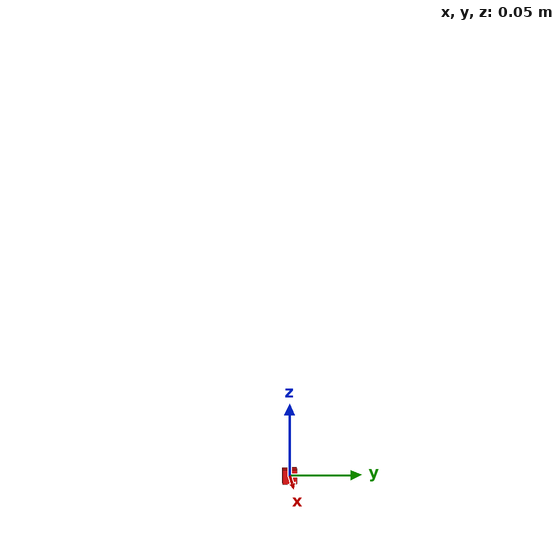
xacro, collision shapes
<?xml version="1.0"?>

<robot name="pioneer3dx"
	xmlns:sensor="http://playerstage.sourceforge.net/gazebo/xmlschema/#sensor"
	xmlns:controller="http://playerstage.sourceforge.net/gazebo/xmlschema/#controller"
	xmlns:interface="http://playerstage.sourceforge.net/gazebo/xmlschema/#interface"
	xmlns:xacro="http://ros.org/wiki/xacro">

<!-- Chassis -->
	<link name="base_link">
		<inertial>
			<mass value="3.5"/>
			<origin xyz="0 0 0"/>
			<inertia ixx="1" ixy="0" ixz="0"
				 iyy="1" iyz="0"
				 izz="1"/>
		</inertial>
		<visual name="base_visual">
			<origin xyz="-0.045 0 0.148" rpy="0 0 0"/>
			<geometry name="pioneer_geom">
				<mesh filename="package://p2os_urdf/meshes/p3dx_meshes/chassis.stl"/>
			</geometry>
			<material name="ChassisRed">
				<color rgba="0.851 0.0 0.0 1.0"/>
			</material>
		</visual>
		<collision>
			<origin xyz="0 0 0" rpy="0 0 0"/>
				<geometry>
					<box size="0.01 0.01 0.01"/>
				</geometry>
		</collision>
	</link>

<!-- Top -->
	<link name="top_plate">
		<inertial>
			<mass value="0"/>
			<origin xyz="0 0 0"/>
			<inertia ixx="1" ixy="0" ixz="0"
				 iyy="1" iyz="0"
 				izz="1"/>
		</inertial>
		<visual name="base_visual">
			<origin xyz="0 0 0" rpy="0 0 0"/>
			<geometry name="pioneer_geom">
				<mesh filename="package://p2os_urdf/meshes/p3dx_meshes/top.stl"/>
			</geometry>
			<material name="TopBlack">
					<color rgba="0.038 0.038 0.038 1.0"/>
			</material>
		</visual>
		<collision>
			<origin xyz="0 0 0" rpy="0 0 0"/>
			<geometry>
				<box size="0 0 0"/>
			</geometry>
		</collision>
	</link>

	<joint name="base_top_joint" type="fixed">
		<origin xyz="-0.045 0 0.234" rpy="0 0 0"/>
		<parent link="base_link"/>
		<child link="top_plate"/>
	</joint>

<!-- Swivel -->
	<link name="swivel">
		<inertial>
			<mass value="0"/>
			<origin xyz="0 0 0"/>
			<inertia ixx="1" ixy="0" ixz="0"
				 iyy="1" iyz="0" izz="1"/>
  	 	</inertial>
	<visual name="base_visual">
		<origin xyz="0 0 0" rpy="0 0 0"/>
		<geometry name="pioneer_geom">
			<mesh filename="package://p2os_urdf/meshes/p3dx_meshes/swivel.stl"/>
		</geometry>
		<material name="swivel">
			<color rgba="0.5 0.5 0.5 1"/>
		</material>
	</visual>
	<collision>
		<origin xyz="0 0 0" rpy="0 0 0"/>
		<geometry>
			<box size="0 0 0"/>
		</geometry>
	</collision>
	</link>

 	<joint name="base_swivel_joint" type="continuous">
		<origin xyz="-0.185 0 0.055" rpy="0 0 0"/>
		<axis xyz="0 0 1" />
		<anchor xyz="0 0 0" />
		<limit effort="100" velocity="100" />
		<joint_properties damping="0.0" friction="0.0" />
		<parent link="base_link"/>
		<child link="swivel"/>
	</joint>

<!-- Center Wheel + Hubcap -->
	<link name="center_hubcap">
		<inertial>
			<mass value="0"/>
			<origin xyz="0 0 0"/>
			<inertia ixx="1" ixy="0" ixz="0"
				 iyy="1" iyz="0" izz="1"/>
  	 	</inertial>
	<visual name="base_visual">
		<origin xyz="0 0 0" rpy="0 0 0"/>
		<geometry name="pioneer_geom">
			<mesh filename="package://p2os_urdf/meshes/p3dx_meshes/center_hubcap.stl"/>
		</geometry>
		<material name="swivel">
			<color rgba="0.5 0.5 0.5 1"/>
		</material>
	</visual>
	<collision>
		<origin xyz="0 0 0" rpy="0 0 0"/>
		<geometry>
			<box size="0 0 0"/>
		</geometry>
	</collision>
	</link>

	<joint name="swivel_hubcap_joint" type="continuous">
		<origin xyz="-0.026 0 -0.016" rpy="0 0 0"/>
		<axis xyz="0 1 0" />
		<anchor xyz="0 0 0" />
		<limit effort="100" velocity="100" />
		<joint_properties damping="0.0" friction="0.0" />
		<parent link="swivel"/>
		<child link="center_hubcap"/>
	</joint>

	<link name="center_wheel">
		<inertial>
			<mass value="0"/>
			<origin xyz="0 0 0"/>
			<inertia ixx="1" ixy="0" ixz="0"
				 iyy="1" iyz="0" izz="1"/>
  	 	</inertial>
	<visual name="base_visual">
		<origin xyz="0 0 0" rpy="0 0 0"/>
		<geometry name="pioneer_geom">
			<mesh filename="package://p2os_urdf/meshes/p3dx_meshes/center_wheel.stl"/>
		</geometry>
		<material name="WheelBlack">
			<color rgba="0.117 0.117 0.117 1"/>
		</material>
	</visual>
	<collision>
		<origin xyz="0 0 0" rpy="0 0 0"/>
		<geometry>
			<box size="0 0 0"/>
		</geometry>
	</collision>
	</link>

	<joint name="center_wheel_joint" type="fixed">
		<origin xyz="-0.0035 0 -0.001" rpy="0 0 0"/>
		<parent link="center_hubcap"/>
		<child link="center_wheel"/>
	</joint>

<!-- Right/Left Hubcap + Wheel -->
<xacro:macro name="p3dx_wheel" params="suffix reflect">
	<link name="p3dx_${suffix}_wheel">
		<inertial>
			<mass value="0"/>
			<origin xyz="0 0 0"/>
			<inertia ixx="1" ixy="0" ixz="0"
				 iyy="1" iyz="0" izz="1"/>
  	 	</inertial>
	<visual name="base_visual">
		<origin xyz="0 0 0" rpy="0 0 0"/>
		<geometry name="pioneer_geom">
			<mesh filename="package://p2os_urdf/meshes/p3dx_meshes/${suffix}_wheel.stl"/>
		</geometry>
		<material name="WheelBlack">
			<color rgba="0.117 0.117 0.117 1"/>
		</material>
	</visual>
	<collision>
		<origin xyz="0 0 0" rpy="0 0 0"/>
		<geometry>
			<box size="0 0 0"/>
		</geometry>
	</collision>
	</link>

	<joint name="base_${suffix}_wheel_joint" type="fixed">
		<origin xyz="0 0 0" rpy="0 0 0" />
		<parent link="p3dx_${suffix}_hubcap"/>
		<child link="p3dx_${suffix}_wheel"/>
	</joint>

	<link name="p3dx_${suffix}_hubcap">
		<inertial>
			<mass value="0"/>
			<origin xyz="0 0 0"/>
			<inertia ixx="1" ixy="0" ixz="0"
				 iyy="1" iyz="0" izz="1"/>
  	 	</inertial>
	<visual name="base_visual">
		<origin xyz="0 0 0" rpy="0 0 0"/>
		<geometry name="pioneer_geom">
			<mesh filename="package://p2os_urdf/meshes/p3dx_meshes/${suffix}_hubcap.stl"/>
		</geometry>
		<material name="HubcapYellow">
			<color rgba="1.0 0.811 0.151 1.0"/>
		</material>
	</visual>
	<collision>
		<origin xyz="0 0 0" rpy="0 0 0"/>
		<geometry>
			<box size="0 0 0"/>
		</geometry>
	</collision>
	</link>

	<joint name="base_${suffix}_hubcap_joint" type="continuous">
		<origin xyz="0 ${reflect*0.158} 0.091" rpy="0 0 0" />
		<axis xyz="0 1 0" />
		<anchor xyz="0 0 0" />
		<limit effort="100" velocity="100" />
		<joint_properties damping="0.0" friction="0.0" />
		<parent link="base_link"/>
		<child link="p3dx_${suffix}_hubcap"/>
	</joint>

	<gazebo reference="p3dx_${suffix}_hubcap" >
		<elem key="mu1" value="50.0" />
		<elem key="mu2" value="50.0" />
		<elem key="kp"  value="100000000.0" />
		<elem key="kd"  value="1.0" />
	</gazebo>

</xacro:macro>

<xacro:p3dx_wheel suffix="left" reflect="1"/>
<xacro:p3dx_wheel suffix="right" reflect="-1"/>

<!-- Front + Back Sonar -->
	<link name="front_sonar">
		<inertial>
			<mass value="0"/>
			<origin xyz="0 0 0"/>
			<inertia ixx="1" ixy="0" ixz="0"
				 iyy="1" iyz="0" izz="1"/>
		</inertial>
		<visual name="base_visual">
			<origin xyz="0 0 0" rpy="0 0 0"/>
			<geometry name="pioneer_geom">
				<mesh filename="package://p2os_urdf/meshes/p3dx_meshes/front_sonar.stl"/>
			</geometry>
			<material name="SonarYellow">
				<color rgba="0.715 0.583 0.210 1.0"/>
			</material>
		</visual>
		<collision>
			<origin xyz="0 0 0" rpy="0 0 0"/>
			<geometry>
				<box size="0 0 0"/>
			</geometry>
		</collision>
	</link>

	<joint name="base_front_joint" type="fixed">
		<origin xyz="-0.198 0 0.208" rpy="0 0 0"/>
		<parent link="base_link"/>
		<child link="front_sonar"/>
	</joint>

	<link name="back_sonar">
		<inertial>
			<mass value="0"/>
			<origin xyz="0 0 0"/>
			<inertia ixx="1" ixy="0" ixz="0"
				 iyy="1" iyz="0" izz="1"/>
		</inertial>
		<visual name="base_visual">
			<origin xyz="0 0 0" rpy="0 0 0"/>
			<geometry name="pioneer_geom">
				<mesh filename="package://p2os_urdf/meshes/p3dx_meshes/back_sonar.stl"/>
			</geometry>
			<material name="SonarYellow">
				<color rgba="0.715 0.583 0.210 1.0"/>
			</material>
		</visual>
		<collision>
			<origin xyz="0 0 0" rpy="0 0 0"/>
			<geometry>
				<box size="0 0 0"/>
			</geometry>
		</collision>
	</link>

	<joint name="base_back_joint" type="fixed">
		<origin xyz="0.109 0 0.209" rpy="0 0 0"/>
		<parent link="base_link"/>
		<child link="back_sonar"/>
	</joint>

<gazebo>
	<controller:differential_position2d name="controller1">
		<update>100</update>
		<leftJoint>base_left_wheel_joint</leftJoint>
		<rightJoint>base_right_wheel_joint</rightJoint>
		<wheelSeparation>0.158</wheelSeparation>
		<wheelDiameter>0.12</wheelDiameter>
		<torque>5</torque>
		<interface:position name="position_iface_0"/>
	</controller:differential_position2d>

	<controller:gazebo_ros_p3d name="p3d_base_controller" plugin="libgazebo_ros_p3d.so">
		<alwaysOn>true</alwaysOn>
		<updateRate>100.0</updateRate>
		<bodyName>base_link</bodyName>
		<topicName>base_pose_ground_truth</topicName>
		<gaussianNoise>0.01</gaussianNoise>
		<frameName>map</frameName>
		<xyzOffsets>25.7 25.7 0</xyzOffsets> <!-- initialize odometry for fake localization-->
		<rpyOffsets>0 0 0</rpyOffsets>
		<interface:position name="p3d_base_position"/>
	</controller:gazebo_ros_p3d>

	<controller:gazebo_ros_controller_manager name="gazebo_ros_controller_manager" plugin="libgazebo_ros_controller_manager.so">
		<alwaysOn>true</alwaysOn>
		<updateRate>1000.0</updateRate>
		<interface:audio name="gazebo_ros_controller_manager_dummy_iface" />
	</controller:gazebo_ros_controller_manager>
</gazebo>

</robot>
